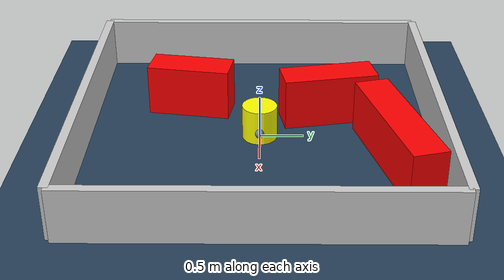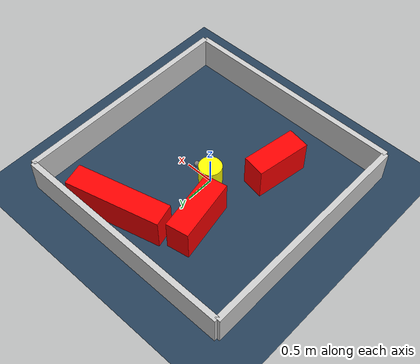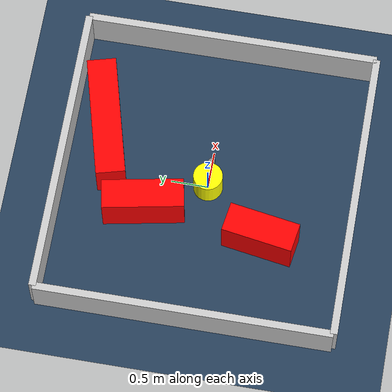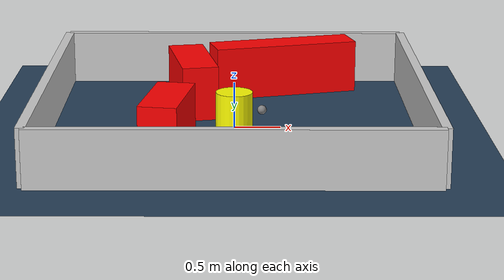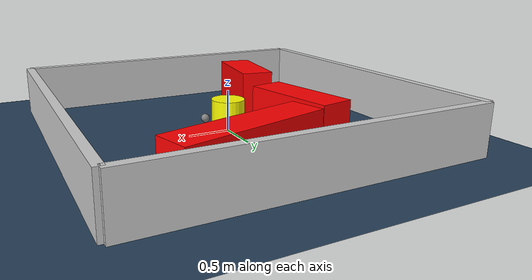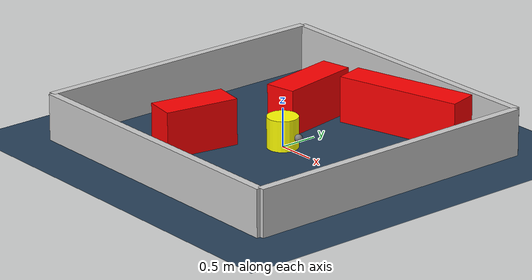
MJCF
<?xml version="1.0" ?>
<mujoco model="generated_environment">
  <option timestep="0.01" integrator="RK4" cone="elliptic"/>
  <default>
    <geom density="1"/>
  </default>
  <asset>
    <texture builtin="gradient" height="3072" rgb1="0.3 0.5 0.7" rgb2="0 0 0" type="skybox" width="512"/>
    <texture builtin="checker" height="300" mark="edge" markrgb="0.8 0.8 0.8" name="groundplane" rgb1="0.2 0.3 0.4" rgb2="0.1 0.2 0.3" type="2d" width="300"/>
    <material name="groundplane" reflectance="0.2" texrepeat="5 5" texture="groundplane" texuniform="true"/>
    <material name="robot" rgba="0.0 1.0 0.0 1"/>
  </asset>
  <worldbody>
    <light dir="0 0 -1" directional="true" pos="0 0 1.5"/>
    <geom condim="4" friction="1.0 0.005 0.001" material="groundplane" name="floor" size="0 0 0.05" type="plane"/>
    <body name="walls">
      <geom name="wall_1" condim="4" pos="-2.0 0.0 0.3" rgba="0.800000011920929 0.800000011920929 0.800000011920929 1.0" size="0.05 2.0 0.3" type="box"/>
      <geom name="wall_2" condim="4" pos="2.0 0.0 0.3" rgba="0.800000011920929 0.800000011920929 0.800000011920929 1.0" size="0.05 2.0 0.3" type="box"/>
      <geom name="wall_3" condim="4" pos="0.0 -2.0 0.3" rgba="0.800000011920929 0.800000011920929 0.800000011920929 1.0" size="2.0 0.05 0.3" type="box"/>
      <geom name="wall_4" condim="4" pos="0.0 2.0 0.3" rgba="0.800000011920929 0.800000011920929 0.800000011920929 1.0" size="2.0 0.05 0.3" type="box"/>
    </body>
    <body name="robot">
      <joint name="joint_x" type="slide" pos="0 0 0" axis="1 0 0"/>
      <joint name="joint_y" type="slide" pos="0 0 0" axis="0 1 0"/>
      <geom name="robot" type="sphere" pos="0.3 0.0 0.2" size="0.05" mass="5." friction="1.0 0.005 0.0001" condim="4" rgba="0.5 0.5 0.5 1.0"/>
      <site name="sensor_ball"/>
    </body>
    <body name="obstacle_movable_1">
      <geom name="obstacle_movable_1" condim="4" pos="0.0 0.0 0.2" euler="0 0 0.0" friction="1.0 0.005 0.001" rgba="1.0 1.0 0.0 1.0" size="0.2 0.2 0.0" type="cylinder" mass="0.1"/>
      <joint type="free"/>
    </body>
    <body name="obstacle_2_static">
      <geom name="obstacle_2_static" condim="4" pos="-0.47085113357358477 0.8050400369693615 0.3" euler="0 0 280.60128409738377" friction="1.0 0.005 0.001" rgba="1 0 0 1" size="0.5518841697922496 0.2 0.3" type="box"/>
    </body>
    <body name="obstacle_3_static">
      <geom name="obstacle_3_static" condim="4" pos="0.5657033693494813 1.4997352341591312 0.3" euler="0 0 194.8739744090823" friction="1.0 0.005 0.001" rgba="1 0 0 1" size="0.8389270440600198 0.2 0.3" type="box"/>
    </body>
    <body name="obstacle_4_static">
      <geom name="obstacle_4_static" condim="4" pos="-0.6835086676729839 -0.827224450465629 0.3" euler="0 0 260.8593972522132" friction="1.0 0.005 0.001" rgba="1 0 0 1" size="0.4850613751558097 0.2 0.3" type="box"/>
    </body>
  </worldbody>
  <actuator>
    <motor name="actuator_x" joint="joint_x" gear="1" ctrlrange="-1 1"/>
    <motor name="actuator_y" joint="joint_y" gear="1" ctrlrange="-1 1"/>
  </actuator>
</mujoco>
